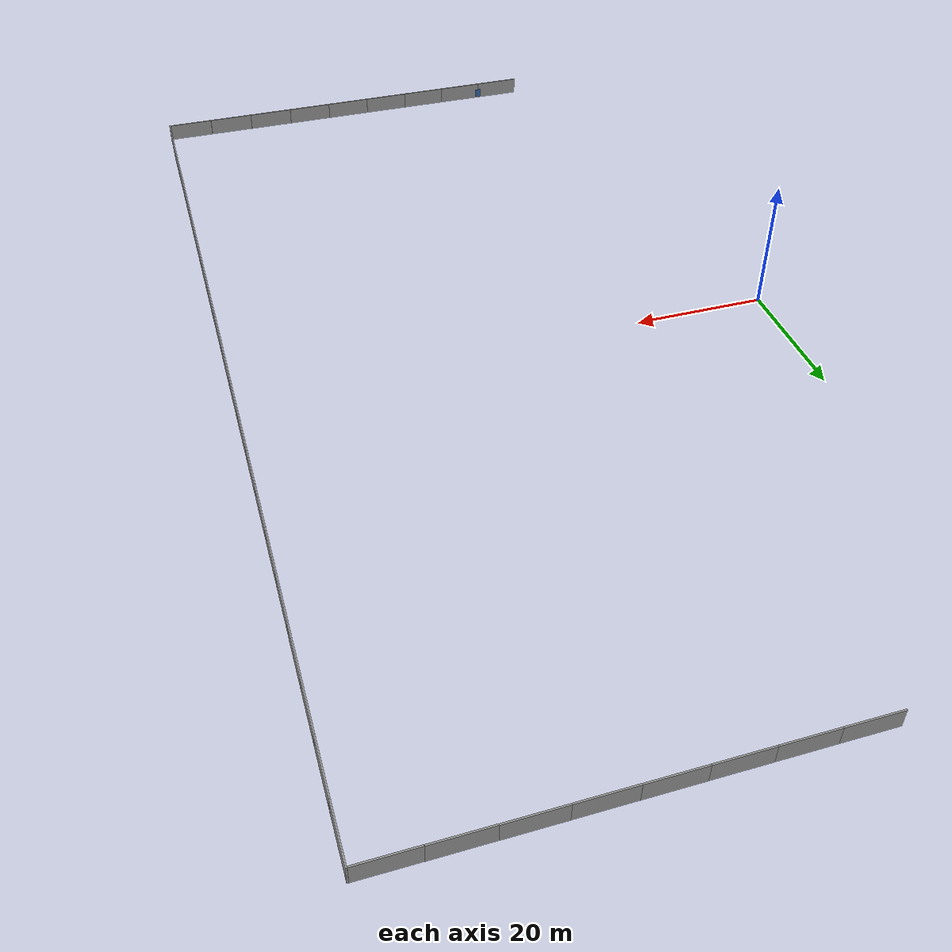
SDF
<sdf version="1.6">
 <world name="default">
  <model name="grey_wall_clone_10_clone_clone_clone_11_clone_clone_9">
   <static>1</static>
   <link name="link">
    <pose>0 0 1.4 0 -0 0</pose>
    <collision name="collision"><geometry><box><size>7.5 0.2 2.8</size></box></geometry></collision>
    <visual name="visual">
     <cast_shadows>0</cast_shadows>
     <geometry><box><size>7.5 0.2 2.8</size></box></geometry>
     <material>
      <script>
       <uri>model://forest/grey_wall/materials/scripts</uri>
       <uri>model://forest/grey_wall/materials/textures</uri>
       <name>vrc/grey_wall</name>
      </script>
     </material>
    </visual>
   </link>
   <pose>17.442 -77.2428 0 0 -0 0</pose>
  </model>
  <model name="grey_wall_clone_10_clone_clone_clone_11_clone_clone_10">
   <static>1</static>
   <link name="link">
    <pose>0 0 1.4 0 -0 0</pose>
    <collision name="collision"><geometry><box><size>7.5 0.2 2.8</size></box></geometry></collision>
    <visual name="visual">
     <cast_shadows>0</cast_shadows>
     <geometry><box><size>7.5 0.2 2.8</size></box></geometry>
     <material>
      <script>
       <uri>model://forest/grey_wall/materials/scripts</uri>
       <uri>model://forest/grey_wall/materials/textures</uri>
       <name>vrc/grey_wall</name>
      </script>
     </material>
    </visual>
   </link>
   <pose>24.9441 -77.2473 0 0 -0 0</pose>
  </model>
  <model name="grey_wall_clone_10_clone_clone_clone_11_clone_clone_11">
   <static>1</static>
   <link name="link">
    <pose>0 0 1.4 0 -0 0</pose>
    <collision name="collision"><geometry><box><size>7.5 0.2 2.8</size></box></geometry></collision>
    <visual name="visual">
     <cast_shadows>0</cast_shadows>
     <geometry><box><size>7.5 0.2 2.8</size></box></geometry>
     <material>
      <script>
       <uri>model://forest/grey_wall/materials/scripts</uri>
       <uri>model://forest/grey_wall/materials/textures</uri>
       <name>vrc/grey_wall</name>
      </script>
     </material>
    </visual>
   </link>
   <pose>32.4421 -77.2463 0 0 -0 0</pose>
  </model>
  <model name="grey_wall_clone_10_clone_clone_clone_11_clone_clone_12">
   <static>1</static>
   <link name="link">
    <pose>0 0 1.4 0 -0 0</pose>
    <collision name="collision"><geometry><box><size>7.5 0.2 2.8</size></box></geometry></collision>
    <visual name="visual">
     <cast_shadows>0</cast_shadows>
     <geometry><box><size>7.5 0.2 2.8</size></box></geometry>
     <material>
      <script>
       <uri>model://forest/grey_wall/materials/scripts</uri>
       <uri>model://forest/grey_wall/materials/textures</uri>
       <name>vrc/grey_wall</name>
      </script>
     </material>
    </visual>
   </link>
   <pose>39.9314 -77.2456 0 0 -0 0</pose>
  </model>
  <model name="grey_wall_clone_10_clone_clone_clone_11_clone_clone_13">
   <static>1</static>
   <link name="link">
    <pose>0 0 1.4 0 -0 0</pose>
    <collision name="collision"><geometry><box><size>7.5 0.2 2.8</size></box></geometry></collision>
    <visual name="visual">
     <cast_shadows>0</cast_shadows>
     <geometry><box><size>7.5 0.2 2.8</size></box></geometry>
     <material>
      <script>
       <uri>model://forest/grey_wall/materials/scripts</uri>
       <uri>model://forest/grey_wall/materials/textures</uri>
       <name>vrc/grey_wall</name>
      </script>
     </material>
    </visual>
   </link>
   <pose>47.429 -77.2489 0 0 -0 0</pose>
  </model>
  <model name="grey_wall_clone_10_clone_clone_clone_11_clone_clone_14">
   <static>1</static>
   <link name="link">
    <pose>0 0 1.4 0 -0 0</pose>
    <collision name="collision"><geometry><box><size>7.5 0.2 2.8</size></box></geometry></collision>
    <visual name="visual">
     <cast_shadows>0</cast_shadows>
     <geometry><box><size>7.5 0.2 2.8</size></box></geometry>
     <material>
      <script>
       <uri>model://forest/grey_wall/materials/scripts</uri>
       <uri>model://forest/grey_wall/materials/textures</uri>
       <name>vrc/grey_wall</name>
      </script>
     </material>
    </visual>
   </link>
   <pose>54.8935 -77.2438 0 0 -0 0</pose>
  </model>
  <model name="grey_wall_clone_10_clone_clone_clone_11_clone_clone_15">
   <static>1</static>
   <link name="link">
    <pose>0 0 1.4 0 -0 0</pose>
    <collision name="collision"><geometry><box><size>7.5 0.2 2.8</size></box></geometry></collision>
    <visual name="visual">
     <cast_shadows>0</cast_shadows>
     <geometry><box><size>7.5 0.2 2.8</size></box></geometry>
     <material>
      <script>
       <uri>model://forest/grey_wall/materials/scripts</uri>
       <uri>model://forest/grey_wall/materials/textures</uri>
       <name>vrc/grey_wall</name>
      </script>
     </material>
    </visual>
   </link>
   <pose>62.4043 -77.2429 0 0 -0 0</pose>
  </model>
  <model name="grey_wall_clone_10_clone_clone_clone_11_clone_clone_16">
   <static>1</static>
   <link name="link">
    <pose>0 0 1.4 0 -0 0</pose>
    <collision name="collision"><geometry><box><size>7.5 0.2 2.8</size></box></geometry></collision>
    <visual name="visual">
     <cast_shadows>0</cast_shadows>
     <geometry><box><size>7.5 0.2 2.8</size></box></geometry>
     <material>
      <script>
       <uri>model://forest/grey_wall/materials/scripts</uri>
       <uri>model://forest/grey_wall/materials/textures</uri>
       <name>vrc/grey_wall</name>
      </script>
     </material>
    </visual>
   </link>
   <pose>69.8968 -77.2494 0 0 -0 0</pose>
  </model>
  <model name="grey_wall_clone_10_clone_clone_clone_11_clone_clone_17">
   <static>1</static>
   <link name="link">
    <pose>0 0 1.4 0 -0 0</pose>
    <collision name="collision"><geometry><box><size>7.5 0.2 2.8</size></box></geometry></collision>
    <visual name="visual">
     <cast_shadows>0</cast_shadows>
     <geometry><box><size>7.5 0.2 2.8</size></box></geometry>
     <material>
      <script>
       <uri>model://forest/grey_wall/materials/scripts</uri>
       <uri>model://forest/grey_wall/materials/textures</uri>
       <name>vrc/grey_wall</name>
      </script>
     </material>
    </visual>
   </link>
   <pose>77.4066 -77.2521 0 0 -0 0</pose>
  </model>
  <model name="grey_wall_clone_10_clone_0_clone_11_clone">
   <static>1</static>
   <link name="link">
    <pose>0 0 1.4 0 -0 0</pose>
    <collision name="collision"><geometry><box><size>7.5 0.2 2.8</size></box></geometry></collision>
    <visual name="visual">
     <cast_shadows>0</cast_shadows>
     <geometry><box><size>7.5 0.2 2.8</size></box></geometry>
     <material>
      <script>
       <uri>model://forest/grey_wall/materials/scripts</uri>
       <uri>model://forest/grey_wall/materials/textures</uri>
       <name>vrc/grey_wall</name>
      </script>
     </material>
    </visual>
   </link>
   <pose>81.2442 -73.5802 0 0 0 -1.5802</pose>
  </model>
  <model name="grey_wall_clone_10_clone_0_clone_10_clone">
   <static>1</static>
   <link name="link">
    <pose>0 0 1.4 0 -0 0</pose>
    <collision name="collision"><geometry><box><size>7.5 0.2 2.8</size></box></geometry></collision>
    <visual name="visual">
     <cast_shadows>0</cast_shadows>
     <geometry><box><size>7.5 0.2 2.8</size></box></geometry>
     <material>
      <script>
       <uri>model://forest/grey_wall/materials/scripts</uri>
       <uri>model://forest/grey_wall/materials/textures</uri>
       <name>vrc/grey_wall</name>
      </script>
     </material>
    </visual>
   </link>
   <pose>81.3001 -66.0858 0 0 0 -1.56932</pose>
  </model>
  <model name="grey_wall_clone_10_clone_0_clone_9_clone">
   <static>1</static>
   <link name="link">
    <pose>0 0 1.4 0 -0 0</pose>
    <collision name="collision"><geometry><box><size>7.5 0.2 2.8</size></box></geometry></collision>
    <visual name="visual">
     <cast_shadows>0</cast_shadows>
     <geometry><box><size>7.5 0.2 2.8</size></box></geometry>
     <material>
      <script>
       <uri>model://forest/grey_wall/materials/scripts</uri>
       <uri>model://forest/grey_wall/materials/textures</uri>
       <name>vrc/grey_wall</name>
      </script>
     </material>
    </visual>
   </link>
   <pose>81.2777 -58.6142 0 0 0 -1.56932</pose>
  </model>
  <model name="grey_wall_clone_10_clone_0_clone_8_clone">
   <static>1</static>
   <link name="link">
    <pose>0 0 1.4 0 -0 0</pose>
    <collision name="collision"><geometry><box><size>7.5 0.2 2.8</size></box></geometry></collision>
    <visual name="visual">
     <cast_shadows>0</cast_shadows>
     <geometry><box><size>7.5 0.2 2.8</size></box></geometry>
     <material>
      <script>
       <uri>model://forest/grey_wall/materials/scripts</uri>
       <uri>model://forest/grey_wall/materials/textures</uri>
       <name>vrc/grey_wall</name>
      </script>
     </material>
    </visual>
   </link>
   <pose>81.2777 -51.1177 0 0 0 -1.56932</pose>
  </model>
  <model name="grey_wall_clone_10_clone_0_clone_7_clone">
   <static>1</static>
   <link name="link">
    <pose>0 0 1.4 0 -0 0</pose>
    <collision name="collision"><geometry><box><size>7.5 0.2 2.8</size></box></geometry></collision>
    <visual name="visual">
     <cast_shadows>0</cast_shadows>
     <geometry><box><size>7.5 0.2 2.8</size></box></geometry>
     <material>
      <script>
       <uri>model://forest/grey_wall/materials/scripts</uri>
       <uri>model://forest/grey_wall/materials/textures</uri>
       <name>vrc/grey_wall</name>
      </script>
     </material>
    </visual>
   </link>
   <pose>81.2788 -43.6064 0 0 0 -1.56932</pose>
  </model>
  <model name="grey_wall_clone_10_clone_0_clone_6_clone">
   <static>1</static>
   <link name="link">
    <pose>0 0 1.4 0 -0 0</pose>
    <collision name="collision"><geometry><box><size>7.5 0.2 2.8</size></box></geometry></collision>
    <visual name="visual">
     <cast_shadows>0</cast_shadows>
     <geometry><box><size>7.5 0.2 2.8</size></box></geometry>
     <material>
      <script>
       <uri>model://forest/grey_wall/materials/scripts</uri>
       <uri>model://forest/grey_wall/materials/textures</uri>
       <name>vrc/grey_wall</name>
      </script>
     </material>
    </visual>
   </link>
   <pose>81.2767 -36.0958 0 0 0 -1.56932</pose>
  </model>
  <model name="grey_wall_clone_10_clone_0_clone_5_clone_13">
   <static>1</static>
   <link name="link">
    <pose>0 0 1.4 0 -0 0</pose>
    <collision name="collision"><geometry><box><size>7.5 0.2 2.8</size></box></geometry></collision>
    <visual name="visual">
     <cast_shadows>0</cast_shadows>
     <geometry><box><size>7.5 0.2 2.8</size></box></geometry>
     <material>
      <script>
       <uri>model://forest/grey_wall/materials/scripts</uri>
       <uri>model://forest/grey_wall/materials/textures</uri>
       <name>vrc/grey_wall</name>
      </script>
     </material>
    </visual>
   </link>
   <pose>81.2728 -28.5811 0 0 0 -1.56932</pose>
  </model>
  <model name="grey_wall_clone_10_clone_0_clone_4_clone">
   <static>1</static>
   <link name="link">
    <pose>0 0 1.4 0 -0 0</pose>
    <collision name="collision"><geometry><box><size>7.5 0.2 2.8</size></box></geometry></collision>
    <visual name="visual">
     <cast_shadows>0</cast_shadows>
     <geometry><box><size>7.5 0.2 2.8</size></box></geometry>
     <material>
      <script>
       <uri>model://forest/grey_wall/materials/scripts</uri>
       <uri>model://forest/grey_wall/materials/textures</uri>
       <name>vrc/grey_wall</name>
      </script>
     </material>
    </visual>
   </link>
   <pose>81.2736 -21.0806 0 0 0 -1.56932</pose>
  </model>
  <model name="grey_wall_clone_10_clone_0_clone_3_clone">
   <static>1</static>
   <link name="link">
    <pose>0 0 1.4 0 -0 0</pose>
    <collision name="collision"><geometry><box><size>7.5 0.2 2.8</size></box></geometry></collision>
    <visual name="visual">
     <cast_shadows>0</cast_shadows>
     <geometry><box><size>7.5 0.2 2.8</size></box></geometry>
     <material>
      <script>
       <uri>model://forest/grey_wall/materials/scripts</uri>
       <uri>model://forest/grey_wall/materials/textures</uri>
       <name>vrc/grey_wall</name>
      </script>
     </material>
    </visual>
   </link>
   <pose>81.2554 -13.5842 0 0 0 -1.56932</pose>
  </model>
  <model name="grey_wall_clone_10_clone_0_clone_2_clone">
   <static>1</static>
   <link name="link">
    <pose>0 0 1.4 0 -0 0</pose>
    <collision name="collision"><geometry><box><size>7.5 0.2 2.8</size></box></geometry></collision>
    <visual name="visual">
     <cast_shadows>0</cast_shadows>
     <geometry><box><size>7.5 0.2 2.8</size></box></geometry>
     <material>
      <script>
       <uri>model://forest/grey_wall/materials/scripts</uri>
       <uri>model://forest/grey_wall/materials/textures</uri>
       <name>vrc/grey_wall</name>
      </script>
     </material>
    </visual>
   </link>
   <pose>81.262 -6.06923 0 0 0 -1.56932</pose>
  </model>
  <model name="grey_wall_clone_10_clone_0_clone_1_clone">
   <static>1</static>
   <link name="link">
    <pose>0 0 1.4 0 -0 0</pose>
    <collision name="collision"><geometry><box><size>7.5 0.2 2.8</size></box></geometry></collision>
    <visual name="visual">
     <cast_shadows>0</cast_shadows>
     <geometry><box><size>7.5 0.2 2.8</size></box></geometry>
     <material>
      <script>
       <uri>model://forest/grey_wall/materials/scripts</uri>
       <uri>model://forest/grey_wall/materials/textures</uri>
       <name>vrc/grey_wall</name>
      </script>
     </material>
    </visual>
   </link>
   <pose>81.2538 1.43804 0 0 0 -1.56932</pose>
  </model>
  <model name="grey_wall_clone_10_clone_0_clone_0_clone">
   <static>1</static>
   <link name="link">
    <pose>0 0 1.4 0 -0 0</pose>
    <collision name="collision"><geometry><box><size>7.5 0.2 2.8</size></box></geometry></collision>
    <visual name="visual">
     <cast_shadows>0</cast_shadows>
     <geometry><box><size>7.5 0.2 2.8</size></box></geometry>
     <material>
      <script>
       <uri>model://forest/grey_wall/materials/scripts</uri>
       <uri>model://forest/grey_wall/materials/textures</uri>
       <name>vrc/grey_wall</name>
      </script>
     </material>
    </visual>
   </link>
   <pose>81.2487 8.94341 0 0 0 -1.56932</pose>
  </model>
  <model name="grey_wall_clone_10_clone_0_clone_clone">
   <static>1</static>
   <link name="link">
    <pose>0 0 1.4 0 -0 0</pose>
    <collision name="collision"><geometry><box><size>7.5 0.2 2.8</size></box></geometry></collision>
    <visual name="visual">
     <cast_shadows>0</cast_shadows>
     <geometry><box><size>7.5 0.2 2.8</size></box></geometry>
     <material>
      <script>
       <uri>model://forest/grey_wall/materials/scripts</uri>
       <uri>model://forest/grey_wall/materials/textures</uri>
       <name>vrc/grey_wall</name>
      </script>
     </material>
    </visual>
   </link>
   <pose>81.244 16.4592 0 0 0 -1.56932</pose>
  </model>
  <model name="grey_wall_clone_10_clone_0_clone_12">
   <static>1</static>
   <link name="link">
    <pose>0 0 1.4 0 -0 0</pose>
    <collision name="collision"><geometry><box><size>7.5 0.2 2.8</size></box></geometry></collision>
    <visual name="visual">
     <cast_shadows>0</cast_shadows>
     <geometry><box><size>7.5 0.2 2.8</size></box></geometry>
     <material>
      <script>
       <uri>model://forest/grey_wall/materials/scripts</uri>
       <uri>model://forest/grey_wall/materials/textures</uri>
       <name>vrc/grey_wall</name>
      </script>
     </material>
    </visual>
   </link>
   <pose>81.241 23.9604 0 0 0 -1.56932</pose>
  </model>
  <model name="grey_wall_clone_10_clone_0_clone_13">
   <static>1</static>
   <link name="link">
    <pose>0 0 1.4 0 -0 0</pose>
    <collision name="collision"><geometry><box><size>7.5 0.2 2.8</size></box></geometry></collision>
    <visual name="visual">
     <cast_shadows>0</cast_shadows>
     <geometry><box><size>7.5 0.2 2.8</size></box></geometry>
     <material>
      <script>
       <uri>model://forest/grey_wall/materials/scripts</uri>
       <uri>model://forest/grey_wall/materials/textures</uri>
       <name>vrc/grey_wall</name>
      </script>
     </material>
    </visual>
   </link>
   <pose>81.233 31.4667 0 0 0 -1.56932</pose>
  </model>
  <model name="grey_wall_clone_10_clone_0_clone_14">
   <static>1</static>
   <link name="link">
    <pose>0 0 1.4 0 -0 0</pose>
    <collision name="collision"><geometry><box><size>7.5 0.2 2.8</size></box></geometry></collision>
    <visual name="visual">
     <cast_shadows>0</cast_shadows>
     <geometry><box><size>7.5 0.2 2.8</size></box></geometry>
     <material>
      <script>
       <uri>model://forest/grey_wall/materials/scripts</uri>
       <uri>model://forest/grey_wall/materials/textures</uri>
       <name>vrc/grey_wall</name>
      </script>
     </material>
    </visual>
   </link>
   <pose>81.2299 38.978 0 0 0 -1.56932</pose>
  </model>
  <model name="grey_wall_clone_10_clone_0_clone_15">
   <static>1</static>
   <link name="link">
    <pose>0 0 1.4 0 -0 0</pose>
    <collision name="collision"><geometry><box><size>7.5 0.2 2.8</size></box></geometry></collision>
    <visual name="visual">
     <cast_shadows>0</cast_shadows>
     <geometry><box><size>7.5 0.2 2.8</size></box></geometry>
     <material>
      <script>
       <uri>model://forest/grey_wall/materials/scripts</uri>
       <uri>model://forest/grey_wall/materials/textures</uri>
       <name>vrc/grey_wall</name>
      </script>
     </material>
    </visual>
   </link>
   <pose>81.2399 46.4861 0 0 0 -1.56932</pose>
  </model>
  <model name="grey_wall_clone_10_clone_0_clone_16">
   <static>1</static>
   <link name="link">
    <pose>0 0 1.4 0 -0 0</pose>
    <collision name="collision"><geometry><box><size>7.5 0.2 2.8</size></box></geometry></collision>
    <visual name="visual">
     <cast_shadows>0</cast_shadows>
     <geometry><box><size>7.5 0.2 2.8</size></box></geometry>
     <material>
      <script>
       <uri>model://forest/grey_wall/materials/scripts</uri>
       <uri>model://forest/grey_wall/materials/textures</uri>
       <name>vrc/grey_wall</name>
      </script>
     </material>
    </visual>
   </link>
   <pose>81.2341 53.9889 0 0 0 -1.56932</pose>
  </model>
  <model name="grey_wall_clone_10_clone_0_clone_17">
   <static>1</static>
   <link name="link">
    <pose>0 0 1.4 0 -0 0</pose>
    <collision name="collision"><geometry><box><size>7.5 0.2 2.8</size></box></geometry></collision>
    <visual name="visual">
     <cast_shadows>0</cast_shadows>
     <geometry><box><size>7.5 0.2 2.8</size></box></geometry>
     <material>
      <script>
       <uri>model://forest/grey_wall/materials/scripts</uri>
       <uri>model://forest/grey_wall/materials/textures</uri>
       <name>vrc/grey_wall</name>
      </script>
     </material>
    </visual>
   </link>
   <pose>81.2319 61.4946 0 0 0 -1.56932</pose>
  </model>
  <model name="grey_wall_clone_10_clone_0_clone_18">
   <static>1</static>
   <link name="link">
    <pose>0 0 1.4 0 -0 0</pose>
    <collision name="collision"><geometry><box><size>7.5 0.2 2.8</size></box></geometry></collision>
    <visual name="visual">
     <cast_shadows>0</cast_shadows>
     <geometry><box><size>7.5 0.2 2.8</size></box></geometry>
     <material>
      <script>
       <uri>model://forest/grey_wall/materials/scripts</uri>
       <uri>model://forest/grey_wall/materials/textures</uri>
       <name>vrc/grey_wall</name>
      </script>
     </material>
    </visual>
   </link>
   <pose>81.2148 68.9647 0 0 0 -1.56932</pose>
  </model>
  <model name="grey_wall_clone_10_clone_clone_0">
   <static>1</static>
   <link name="link">
    <pose>0 0 1.4 0 -0 0</pose>
    <collision name="collision"><geometry><box><size>7.5 0.2 2.8</size></box></geometry></collision>
    <visual name="visual">
     <cast_shadows>0</cast_shadows>
     <geometry><box><size>7.5 0.2 2.8</size></box></geometry>
     <material>
      <script>
       <uri>model://forest/grey_wall/materials/scripts</uri>
       <uri>model://forest/grey_wall/materials/textures</uri>
       <name>vrc/grey_wall</name>
      </script>
     </material>
    </visual>
   </link>
   <pose>77.3508 72.6116 0 0 -0 0</pose>
  </model>
  <model name="grey_wall_clone_10_clone_clone_1">
   <static>1</static>
   <link name="link">
    <pose>0 0 1.4 0 -0 0</pose>
    <collision name="collision"><geometry><box><size>7.5 0.2 2.8</size></box></geometry></collision>
    <visual name="visual">
     <cast_shadows>0</cast_shadows>
     <geometry><box><size>7.5 0.2 2.8</size></box></geometry>
     <material>
      <script>
       <uri>model://forest/grey_wall/materials/scripts</uri>
       <uri>model://forest/grey_wall/materials/textures</uri>
       <name>vrc/grey_wall</name>
      </script>
     </material>
    </visual>
   </link>
   <pose>69.8438 72.6289 0 0 -0 0</pose>
  </model>
  <model name="grey_wall_clone_10_clone_clone_2">
   <static>1</static>
   <link name="link">
    <pose>0 0 1.4 0 -0 0</pose>
    <collision name="collision"><geometry><box><size>7.5 0.2 2.8</size></box></geometry></collision>
    <visual name="visual">
     <cast_shadows>0</cast_shadows>
     <geometry><box><size>7.5 0.2 2.8</size></box></geometry>
     <material>
      <script>
       <uri>model://forest/grey_wall/materials/scripts</uri>
       <uri>model://forest/grey_wall/materials/textures</uri>
       <name>vrc/grey_wall</name>
      </script>
     </material>
    </visual>
   </link>
   <pose>62.3519 72.6417 0 0 -0 0</pose>
  </model>
  <model name="grey_wall_clone_10_clone_clone_3">
   <static>1</static>
   <link name="link">
    <pose>0 0 1.4 0 -0 0</pose>
    <collision name="collision"><geometry><box><size>7.5 0.2 2.8</size></box></geometry></collision>
    <visual name="visual">
     <cast_shadows>0</cast_shadows>
     <geometry><box><size>7.5 0.2 2.8</size></box></geometry>
     <material>
      <script>
       <uri>model://forest/grey_wall/materials/scripts</uri>
       <uri>model://forest/grey_wall/materials/textures</uri>
       <name>vrc/grey_wall</name>
      </script>
     </material>
    </visual>
   </link>
   <pose>54.875 72.6299 0 0 -0 0</pose>
  </model>
  <model name="grey_wall_clone_10_clone_clone_4">
   <static>1</static>
   <link name="link">
    <pose>0 0 1.4 0 -0 0</pose>
    <collision name="collision"><geometry><box><size>7.5 0.2 2.8</size></box></geometry></collision>
    <visual name="visual">
     <cast_shadows>0</cast_shadows>
     <geometry><box><size>7.5 0.2 2.8</size></box></geometry>
     <material>
      <script>
       <uri>model://forest/grey_wall/materials/scripts</uri>
       <uri>model://forest/grey_wall/materials/textures</uri>
       <name>vrc/grey_wall</name>
      </script>
     </material>
    </visual>
   </link>
   <pose>47.3663 72.6324 0 0 -0 0</pose>
  </model>
  <model name="grey_wall_clone_10_clone_clone_5">
   <static>1</static>
   <link name="link">
    <pose>0 0 1.4 0 -0 0</pose>
    <collision name="collision"><geometry><box><size>7.5 0.2 2.8</size></box></geometry></collision>
    <visual name="visual">
     <cast_shadows>0</cast_shadows>
     <geometry><box><size>7.5 0.2 2.8</size></box></geometry>
     <material>
      <script>
       <uri>model://forest/grey_wall/materials/scripts</uri>
       <uri>model://forest/grey_wall/materials/textures</uri>
       <name>vrc/grey_wall</name>
      </script>
     </material>
    </visual>
   </link>
   <pose>39.8774 72.6251 0 0 -0 0</pose>
  </model>
  <model name="grey_wall_clone_10_clone_clone_6">
   <static>1</static>
   <link name="link">
    <pose>0 0 1.4 0 -0 0</pose>
    <collision name="collision"><geometry><box><size>7.5 0.2 2.8</size></box></geometry></collision>
    <visual name="visual">
     <cast_shadows>0</cast_shadows>
     <geometry><box><size>7.5 0.2 2.8</size></box></geometry>
     <material>
      <script>
       <uri>model://forest/grey_wall/materials/scripts</uri>
       <uri>model://forest/grey_wall/materials/textures</uri>
       <name>vrc/grey_wall</name>
      </script>
     </material>
    </visual>
   </link>
   <pose>32.3692 72.6193 0 0 -0 0</pose>
  </model>
  <model name="grey_wall_clone_10_clone_clone_7">
   <static>1</static>
   <link name="link">
    <pose>0 0 1.4 0 -0 0</pose>
    <collision name="collision"><geometry><box><size>7.5 0.2 2.8</size></box></geometry></collision>
    <visual name="visual">
     <cast_shadows>0</cast_shadows>
     <geometry><box><size>7.5 0.2 2.8</size></box></geometry>
     <material>
      <script>
       <uri>model://forest/grey_wall/materials/scripts</uri>
       <uri>model://forest/grey_wall/materials/textures</uri>
       <name>vrc/grey_wall</name>
      </script>
     </material>
    </visual>
   </link>
   <pose>24.8712 72.6187 0 0 -0 0</pose>
  </model>
  <model name="hinge_door">
   <link name="link_0">
    <inertial>
     <mass>0.11</mass>
     <inertia>
      <ixx>0.0366896</ixx>
      <ixy>0</ixy>
      <ixz>0</ixz>
      <iyy>0.0477583</iyy>
      <iyz>0</iyz>
      <izz>0.0111146</izz>
     </inertia>
    </inertial>
    <pose>0.25 0 1 0 -0 0</pose>
    <visual name="visual">
     <geometry><box><size>1.1 0.05 1.5</size></box></geometry>
     <material>
      <lighting>1</lighting>
      <script><uri>file://media/materials/scripts/gazebo.material</uri><name>Gazebo/Grey</name></script>
      <shader type="pixel"><normal_map>__default__</normal_map></shader>
      <ambient>0.204 0.396 0.643 1</ambient>
      <diffuse>0.7 0.7 0.7 1</diffuse>
      <specular>0.01 0.01 0.01 1</specular>
      <emissive>0 0 0 1</emissive>
     </material>
    </visual>
    <collision name="collision">
     <geometry><box><size>1.1 0.05 1.5</size></box></geometry>
     <surface>
      <friction>
       <ode><mu>1</mu><mu2>1</mu2><fdir1>0 0 0</fdir1><slip1>0</slip1><slip2>0</slip2></ode>
       <torsional>
        <coefficient>1</coefficient>
        <patch_radius>0</patch_radius>
        <surface_radius>0</surface_radius>
        <use_patch_radius>1</use_patch_radius>
        <ode><slip>0</slip></ode>
       </torsional>
      </friction>
      <bounce><restitution_coefficient>0</restitution_coefficient><threshold>1e+06</threshold></bounce>
      <contact>
       <collide_without_contact>0</collide_without_contact>
       <collide_without_contact_bitmask>1</collide_without_contact_bitmask>
       <collide_bitmask>1</collide_bitmask>
       <ode>
        <soft_cfm>0</soft_cfm>
        <soft_erp>0.2</soft_erp>
        <kp>1e+13</kp>
        <kd>1</kd>
        <max_vel>0.01</max_vel>
        <min_depth>0</min_depth>
       </ode>
       <bullet>
        <split_impulse>1</split_impulse>
        <split_impulse_penetration_threshold>-0.01</split_impulse_penetration_threshold>
        <soft_cfm>0</soft_cfm>
        <soft_erp>0.2</soft_erp>
        <kp>1e+13</kp>
        <kd>1</kd>
       </bullet>
      </contact>
     </surface>
    </collision>
   </link>
   <link name="link_1">
    <inertial>
     <mass>10.9956</mass>
     <inertia>
      <ixx>3.67206</ixx>
      <ixy>0</ixy>
      <ixz>0</ixz>
      <iyy>3.67206</iyy>
      <iyz>0</iyz>
      <izz>0.0137445</izz>
     </inertia>
    </inertial>
    <pose>-0.25 0 1 0 -0 0</pose>
    <visual name="visual">
     <geometry><cylinder><radius>0.05</radius><length>1.5</length></cylinder></geometry>
     <material>
      <lighting>1</lighting>
      <script><uri>file://media/materials/scripts/gazebo.material</uri><name>Gazebo/Grey</name></script>
      <shader type="pixel"><normal_map>__default__</normal_map></shader>
      <ambient>0.204 0.396 0.643 1</ambient>
      <diffuse>0.7 0.7 0.7 1</diffuse>
      <specular>0.01 0.01 0.01 1</specular>
      <emissive>0 0 0 1</emissive>
     </material>
    </visual>
    <collision name="collision">
     <geometry><cylinder><radius>0.05</radius><length>2</length></cylinder></geometry>
     <surface>
      <friction>
       <ode><mu>1</mu><mu2>1</mu2><fdir1>0 0 0</fdir1><slip1>0</slip1><slip2>0</slip2></ode>
       <torsional>
        <coefficient>1</coefficient>
        <patch_radius>0</patch_radius>
        <surface_radius>0</surface_radius>
        <use_patch_radius>1</use_patch_radius>
        <ode><slip>0</slip></ode>
       </torsional>
      </friction>
      <bounce><restitution_coefficient>0</restitution_coefficient><threshold>1e+06</threshold></bounce>
      <contact>
       <collide_without_contact>0</collide_without_contact>
       <collide_without_contact_bitmask>1</collide_without_contact_bitmask>
       <collide_bitmask>1</collide_bitmask>
       <ode>
        <soft_cfm>0</soft_cfm>
        <soft_erp>0.2</soft_erp>
        <kp>1e+13</kp>
        <kd>1</kd>
        <max_vel>0.01</max_vel>
        <min_depth>0</min_depth>
       </ode>
       <bullet>
        <split_impulse>1</split_impulse>
        <split_impulse_penetration_threshold>-0.01</split_impulse_penetration_threshold>
        <soft_cfm>0</soft_cfm>
        <soft_erp>0.2</soft_erp>
        <kp>1e+13</kp>
        <kd>1</kd>
       </bullet>
      </contact>
     </surface>
    </collision>
   </link>
   <joint name="hinge" type="revolute">
    <parent>link_1</parent>
    <child>link_0</child>
    <pose>-0.5 0 0 0 -0 0</pose>
    <axis>
     <xyz>0 0 1</xyz>
     <use_parent_model_frame>0</use_parent_model_frame>
     <limit>
      <lower>-1.79769e+308</lower>
      <upper>1.79769e+308</upper>
      <effort>-1</effort>
      <velocity>-1</velocity>
     </limit>
     <dynamics>
      <spring_reference>0</spring_reference>
      <spring_stiffness>0</spring_stiffness>
      <damping>0</damping>
      <friction>0</friction>
     </dynamics>
    </axis>
    <physics>
     <ode><limit><cfm>0</cfm><erp>0.2</erp></limit><suspension><cfm>0</cfm><erp>0.2</erp></suspension></ode>
    </physics>
   </joint>
   <joint name="floor_link" type="fixed">
    <child>link_1</child>
    <parent>world</parent>
    <axis>
     <xyz>0 0 1</xyz>
     <dynamics><spring_reference>0</spring_reference><spring_stiffness>0</spring_stiffness></dynamics>
     <use_parent_model_frame>0</use_parent_model_frame>
     <limit><lower>-1e+16</lower><upper>1e+16</upper></limit>
    </axis>
   </joint>
   <pose>21.0511 -76.9203 -0 0 -0 0</pose>
  </model>
 </world>
</sdf>
